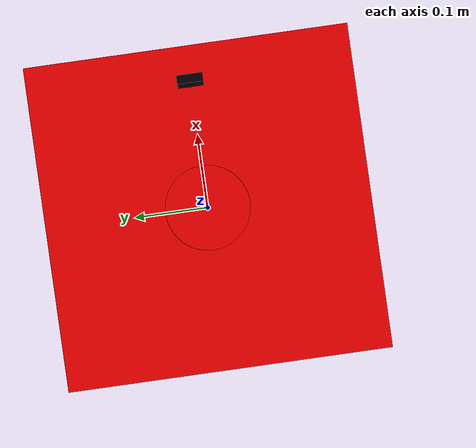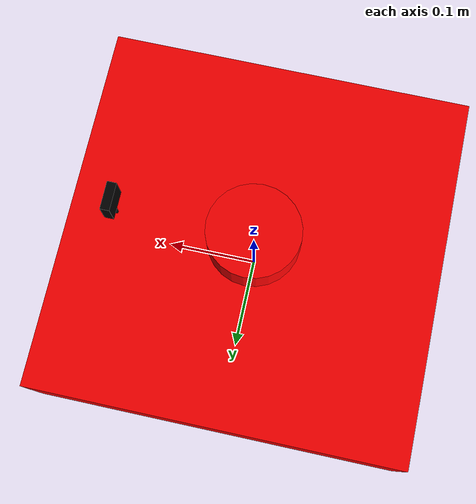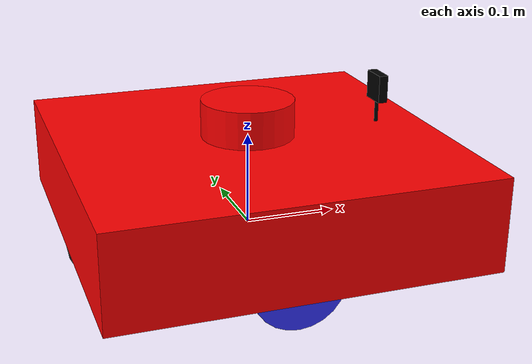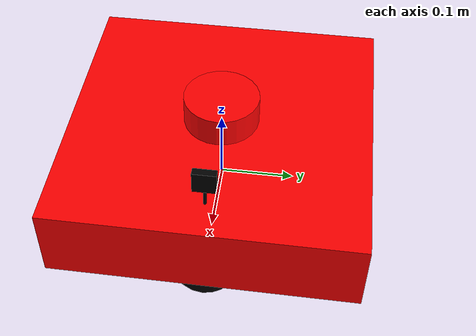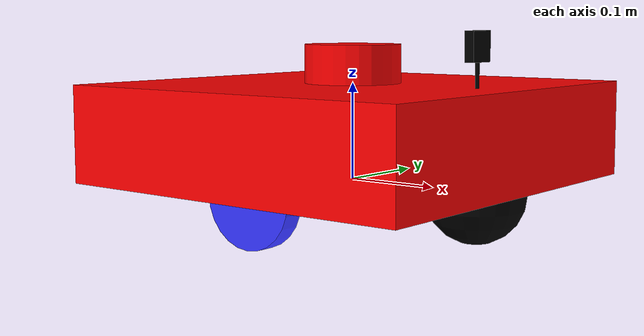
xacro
<?xml version="1.0"?>
<robot xmlns:xacro="http://www.ros.org/wiki/xacro"  name="robot">

    <xacro:include filename="main_robot.xacro" />
    <xacro:include filename="lidar.xacro" />
    <xacro:include filename="imu.xacro" />

    <xacro:arg name="use_depth_cam" default="true"/>
    <xacro:if value="$(arg use_depth_cam)">
        <xacro:include filename="depth_camera.xacro"/>
    </xacro:if>
    <xacro:unless value="$(arg use_depth_cam)">
        <xacro:include filename="camera.xacro"/>
    </xacro:unless>

    <xacro:include filename="gazebo_ros2_control.xacro" />

    <xacro:arg name="use_ros2_control" default="true"/>
    <xacro:if value="$(arg use_ros2_control)">
    </xacro:if>
    <xacro:unless value="$(arg use_ros2_control)">
    </xacro:unless>

</robot>

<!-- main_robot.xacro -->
<robot xmlns:xacro="http://www.ros.org/wiki/xacro">

    <xacro:include filename="inertial.xacro" />

    <xacro:property name="chassis_length" value="0.4" />
    <xacro:property name="chassis_width" value="0.4" />
    <xacro:property name="chassis_height" value="0.1" />
    <xacro:property name="chassis_mass" value="1" />

    <xacro:property name="wheel_length" value="0.02" />
    <xacro:property name="wheel_radius" value="0.05" />
    <xacro:property name="wheel_offset_x" value="0.1" />
    <xacro:property name="wheel_offset_z" value="0.02" />
    <xacro:property name="wheel_seperation" value="0.3" />
    <xacro:property name="wheel_mass" value="0.2" />
    <xacro:property name="caster_wheel_mass" value="0.01" />
    <xacro:property name="caster_wheel_radius" value="0.05" />

    <link name="base_link"/>

    <joint name="base_footprint_joint" type="fixed">
        <parent link="base_link"/>
        <child link="base_footprint"/>
        <origin xyz="0 0 0"/>
    </joint>
    <link name="base_footprint"/>
<!-- DE XE -->
    <joint name="chassis_joint" type="fixed">
        <parent link="base_link"/>
        <child link="chassis_link"/>
        <origin xyz="${-chassis_length/2} 0 0"/>
    </joint>

    <link name="chassis_link">
        <visual>
            <origin xyz="${chassis_width/2} 0 ${chassis_height/2}" rpy="0 0 0"/>
            <geometry>
                <box size= "${chassis_length} ${chassis_width} ${chassis_height}"/>
            </geometry>
            <material name="red"/>
        </visual>

        <collision>
            <origin xyz="${chassis_width/2} 0 ${chassis_height/2}" rpy="0 0 0"/>
            <geometry>
                <box size= "${chassis_length} ${chassis_width} ${chassis_height}"/>
            </geometry>
        </collision>

        <xacro:inertial_box mass="${chassis_mass}" x="${chassis_length}" y="${chassis_width}" z="${chassis_height}">
            <origin xyz="${chassis_length/2} 0 ${chassis_height/2}" rpy="0 0 0"/>
        </xacro:inertial_box>
    </link>

    <gazebo reference="chassis_link">
        <material>Gazebo/Red</material>
    </gazebo>

<!-- WHEEL -->
<!-- LEFT WHEEL -->
    <joint name="left_wheel_joint" type="continuous">
        <parent link="base_link"/>
        <child link="left_wheel_link"/>
        <origin xyz="0 ${wheel_seperation/2} 0" rpy="-${pi/2} 0 0"/>
        <axis xyz="0 0 1"/>
        <!-- axis of rotation -->
    </joint>

    <link name="left_wheel_link">
        <visual>
            <geometry>
                <cylinder length="${wheel_length}" radius="${wheel_radius}" />
            </geometry>
            <material name="blue"/>
        </visual>

        <collision>
            <origin xyz="0 0 0"/>
            <geometry>
                <cylinder length="${wheel_length}" radius="${wheel_radius}" />
            </geometry>
        </collision>

        <xacro:inertial_cylinder mass="${wheel_mass}" length="${wheel_length}" radius="${wheel_radius}">
            <origin xyz="0 0 0" rpy="0 0 0"/>
        </xacro:inertial_cylinder>
    </link>

    <gazebo reference="left_wheel_link">
        <material>Gazebo/Blue</material>
    </gazebo>

<!-- RIGHT WHEEL -->
    <joint name="right_wheel_joint" type="continuous">
        <parent link="base_link"/>
        <child link="right_wheel_link"/>
        <origin xyz="0 -${wheel_seperation/2} 0" rpy="${pi/2} 0 0"/>
        <axis xyz="0 0 -1"/>
        <!-- axis of rotation -->
    </joint>

    <link name="right_wheel_link">
        <visual>
            <geometry>
                <cylinder length="${wheel_length}" radius="${wheel_radius}" />
            </geometry>
            <material name="blue"/>
        </visual>

        <collision>
            <origin xyz="0 0 0"/>
            <geometry>
                <cylinder length="${wheel_length}" radius="${wheel_radius}" />
            </geometry>
        </collision>

        <xacro:inertial_cylinder mass="${wheel_mass}" length="${wheel_length}" radius="${wheel_radius}">
            <origin xyz="0 0 0" rpy="0 0 0"/>
        </xacro:inertial_cylinder>
    </link>

    <gazebo reference="right_wheel_link">
        <material>Gazebo/Blue</material>
    </gazebo>

<!-- CASTER WHEELS -->

    <joint name="caster_wheel_joint_front" type="fixed">
        <parent link="base_link"/>
        <child link="caster_wheel_front"/>
        <origin xyz="0.15 0 0" rpy="0 0 0"/>
    </joint>

    <link name="caster_wheel_front">
        <visual>
            <geometry>
                <sphere radius="0.05" />
            </geometry>
            <material name="black"/>
        </visual>

        <collision>
            <origin xyz="0 0 0"/>
            <geometry>
                <sphere radius="${caster_wheel_radius}" />
            </geometry>
        </collision>

        <xacro:inertial_sphere mass="${caster_wheel_mass}" radius="${caster_wheel_radius}">
            <origin xyz="0 0 0" rpy="0 0 0"/>
        </xacro:inertial_sphere>
    </link>

    <gazebo reference="caster_wheel_front">
        <material>Gazebo/Black</material>
        <mu1 value="0.01"/>
        <mu2 value="0.01"/>
    </gazebo>

    <joint name="caster_wheel_joint_back" type="fixed">
        <parent link="base_link"/>
        <child link="caster_wheel_back"/>
        <origin xyz="-0.15 0 0" rpy="0 0 0"/>
    </joint>

    <link name="caster_wheel_back">
        <visual>
            <geometry>
                <sphere radius="${caster_wheel_radius}" />
            </geometry>
            <material name="black"/>
        </visual>

        <collision>
            <origin xyz="0 0 0"/>
            <geometry>
                <sphere radius="0.05" />
            </geometry>
        </collision>
        <xacro:inertial_sphere mass="${caster_wheel_mass}" radius="${caster_wheel_radius}">
            <origin xyz="0 0 0" rpy="0 0 0"/>
        </xacro:inertial_sphere>
    </link>

    <gazebo reference="caster_wheel_back">
        <material>Gazebo/Black</material>
        <mu1 value="0.01"/>
        <mu2 value="0.01"/>
    </gazebo>

</robot>

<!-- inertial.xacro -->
<robot xmlns:xacro="http://www.ros.org/wiki/xacro" >

    <!-- This file is not a robot in and of itself, it just contains some useful tags that could be included in any robot -->
    <!-- Specify some colours -->

    <material name="white">
        <color rgba="1 1 1 1" />
    </material>

    <material name="orange">
        <color rgba="1 0.3 0.1 1"/>
    </material>

    <material name="blue">
        <color rgba="0.2 0.2 1 1"/>
    </material>

    <material name="black">
        <color rgba="0 0 0 1"/>
    </material>

    <material name="red">
        <color rgba="1 0 0 1"/>
    </material>

    <material name="mycolor">
        <color rgba="0.5 0.5 0.5 1"/>
    </material>

    <!-- Specify some standard inertial calculations https://en.wikipedia.org/wiki/List_of_moments_of_inertia -->
    <!-- These make use of xacro's mathematical functionality -->

    <xacro:macro name="inertial_sphere" params="mass radius *origin">
        <inertial>
            <xacro:insert_block name="origin"/>
            <mass value="${mass}" />
            <inertia ixx="${(2/5) * mass * (radius*radius)}" ixy="0.0" ixz="0.0"
                    iyy="${(2/5) * mass * (radius*radius)}" iyz="0.0"
                    izz="${(2/5) * mass * (radius*radius)}" />
        </inertial>
    </xacro:macro>

    <xacro:macro name="inertial_box" params="mass x y z *origin">
        <inertial>
            <xacro:insert_block name="origin"/>
            <mass value="${mass}" />
            <inertia ixx="${(1/12) * mass * (y*y+z*z)}" ixy="0.0" ixz="0.0"
                    iyy="${(1/12) * mass * (x*x+z*z)}" iyz="0.0"
                    izz="${(1/12) * mass * (x*x+y*y)}" />
        </inertial>
    </xacro:macro>

    <xacro:macro name="inertial_cylinder" params="mass length radius *origin">
        <inertial>
            <xacro:insert_block name="origin"/>
            <mass value="${mass}" />
            <inertia ixx="${(1/12) * mass * (3*radius*radius + length*length)}" ixy="0.0" ixz="0.0"
                    iyy="${(1/12) * mass * (3*radius*radius + length*length)}" iyz="0.0"
                    izz="${(1/2) * mass * (radius*radius)}" />
        </inertial>
    </xacro:macro>

</robot>

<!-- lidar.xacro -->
<robot xmlns:xacro="http://www.ros.org/wiki/xacro" >

    <joint name="laser_joint" type="fixed">
        <parent link="chassis_link"/>
        <child link="laser_frame"/>
        <origin xyz="0.2 0 0.12" rpy="0 0 0"/>
    </joint>

    <link name="laser_frame">
        <visual>
            <geometry>
                <cylinder radius="0.05" length="0.04"/>
            </geometry>
            <material name="red"/>
        </visual>
        <collision>
            <geometry>
                <cylinder radius="0.05" length="0.04"/>
            </geometry>
        </collision>
        <xacro:inertial_cylinder mass="0.1" length="0.04" radius="0.05">
            <origin xyz="0 0 0" rpy="0 0 0"/>
        </xacro:inertial_cylinder>
    </link>

    <gazebo reference="laser_frame">
        <material>Gazebo/Yellow</material>

        <sensor name="laser" type="gpu_lidar">
            <pose> 0 0 0 0 0 0 </pose>
            <visualize>false</visualize>
            <update_rate>10</update_rate>
            <lidar>
                <scan>
                    <horizontal>
                        <samples>360</samples>
                        <min_angle>-3.14</min_angle>
                        <max_angle>3.14</max_angle>
                    </horizontal>
                </scan>
                <range>
                    <min>0.3</min>
                    <max>12</max>
                </range>
            </lidar>
            <topic>scan</topic>
            <gz_frame_id>laser_frame</gz_frame_id>
        </sensor>
    </gazebo>

</robot>

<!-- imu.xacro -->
<robot xmlns:xacro="http://www.ros.org/wiki/xacro">

    <joint name="imu_joint" type="fixed">
        <parent link="base_link"/>
        <child link="imu_link"/>
        <origin xyz="0 0 0.1" rpy="0 0 0"/>
    </joint>
    <link name="imu_link"/>

    <gazebo reference="imu_link">
      <sensor name="diffbot_imu" type="imu">
        <always_on>true</always_on>
        <update_rate>200</update_rate>
        <imu>
          <angular_velocity>
            <x>
              <noise type="gaussian">
                <mean>0.0</mean>
                <stddev>0.001</stddev>
                <bias_mean>0.0</bias_mean>
                <bias_stddev>0.0</bias_stddev>
              </noise>
            </x>
            <y>
              <noise type="gaussian">
                <mean>0.0</mean>
                <stddev>0.001</stddev>
                <bias_mean>0.0</bias_mean>
                <bias_stddev>0.0</bias_stddev>
              </noise>
            </y>
            <z>
              <noise type="gaussian">
                <mean>0.0</mean>
                <stddev>0.001</stddev>
                <bias_mean>0.0</bias_mean>
                <bias_stddev>0.0</bias_stddev>
              </noise>
            </z>
          </angular_velocity>
          <linear_acceleration>
            <x>
              <noise type="gaussian">
                <mean>0.0</mean>
                <stddev>1.7e-2</stddev>
              </noise>
            </x>
            <y>
              <noise type="gaussian">
                <mean>0.0</mean>
                <stddev>1.7e-2</stddev>
              </noise>
            </y>
            <z>
              <noise type="gaussian">
                <mean>0.0</mean>
                <stddev>1.7e-2</stddev>
              </noise>
            </z>
          </linear_acceleration>
        </imu>
        <ignition_frame_id>imu_link</ignition_frame_id>
        <plugin filename="libignition-gazebo-imu-system.so" name="ignition::gazebo::systems::Imu">          <ros>
            <remapping>~/out:=imu</remapping>
          </ros>
        </plugin>
      </sensor>
    </gazebo>

</robot>

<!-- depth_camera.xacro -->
<robot xmlns:xacro="http://www.ros.org/wiki/xacro">

    <joint name="camera_joint" type="fixed">
        <parent link="chassis_link"/>
        <child link="camera_link"/>
        <origin xyz="0.35 0 0.14" rpy="0 0 0"/>
    </joint>

    <joint name="camera_rgb_joint" type="fixed">
        <parent link="camera_link"/>
        <child link="camera_rgb_frame"/>
        <origin xyz="0 0 0" rpy="0 0 0"/>
    </joint>

    <joint name="camera_rgb_optical_joint" type="fixed">
        <parent link="camera_rgb_frame"/>
        <child link="camera_rgb_optical_frame"/>
        <origin xyz="0 0 0" rpy="${-pi/2} 0 ${-pi/2}"/>
    </joint>

    <link name="camera_link"/>
    <link name="camera_rgb_optical_frame"/>

    <link name="camera_rgb_frame">
        <visual>
            <geometry>
                <box size="0.010 0.03 0.03"/>
            </geometry>
            <material name="black"/>
        </visual>
        <visual>
            <origin xyz="0 0 -0.04"/>
            <geometry>
                <cylinder radius="0.002" length="0.08"/>
            </geometry>
            <material name="black"/>
        </visual>
    </link>

    <gazebo reference="camera_rgb_frame">
        <material>Gazebo/Black</material>

        <sensor name="camera" type="depth">
            <pose> 0 0 0 0 0 0 </pose>
            <visualize>true</visualize>
            <update_rate>30</update_rate>
            <camera>
                <horizontal_fov>1.089</horizontal_fov>
                <image>
                    <format>B8G8R8</format>
                    <width>640</width>
                    <height>480</height>
                </image>
                <clip>
                    <near>0.05</near>
                    <far>300.0</far>
                </clip>
            </camera>
            <plugin name="camera_controller" filename="libgazebo_ros_camera.so">
                <frame_name>camera_rgb_optical_frame</frame_name>
                <min_depth>0.3</min_depth>
                <max_depth>100.0</max_depth>
            </plugin>
        </sensor>

    </gazebo>

</robot>
